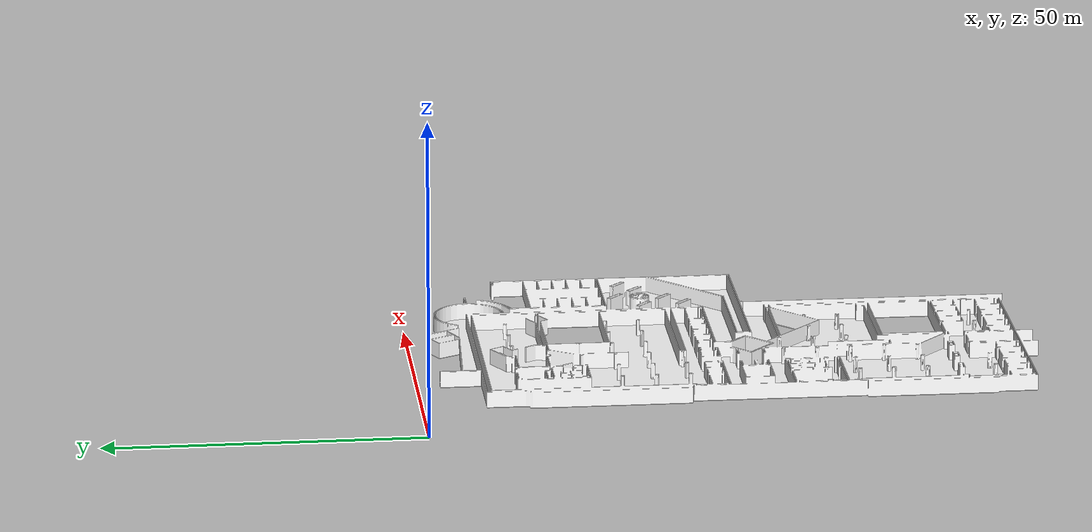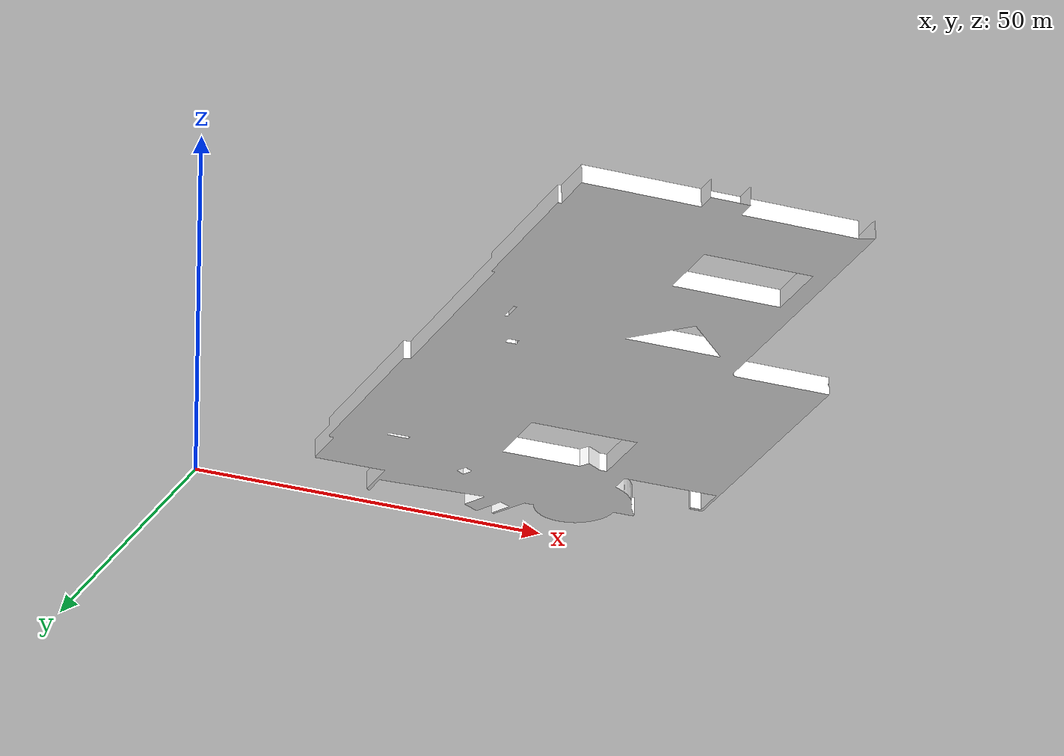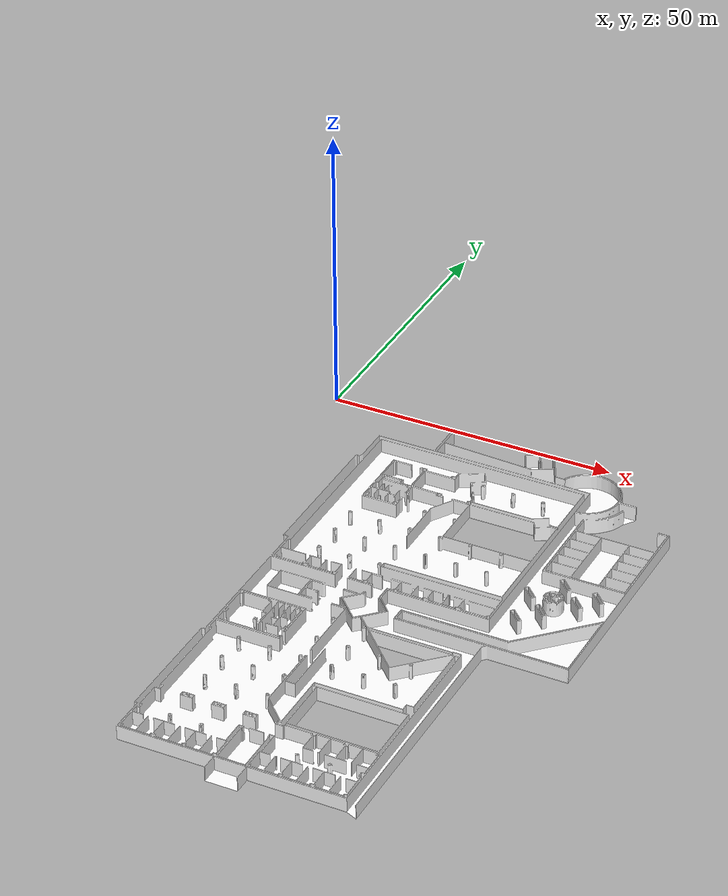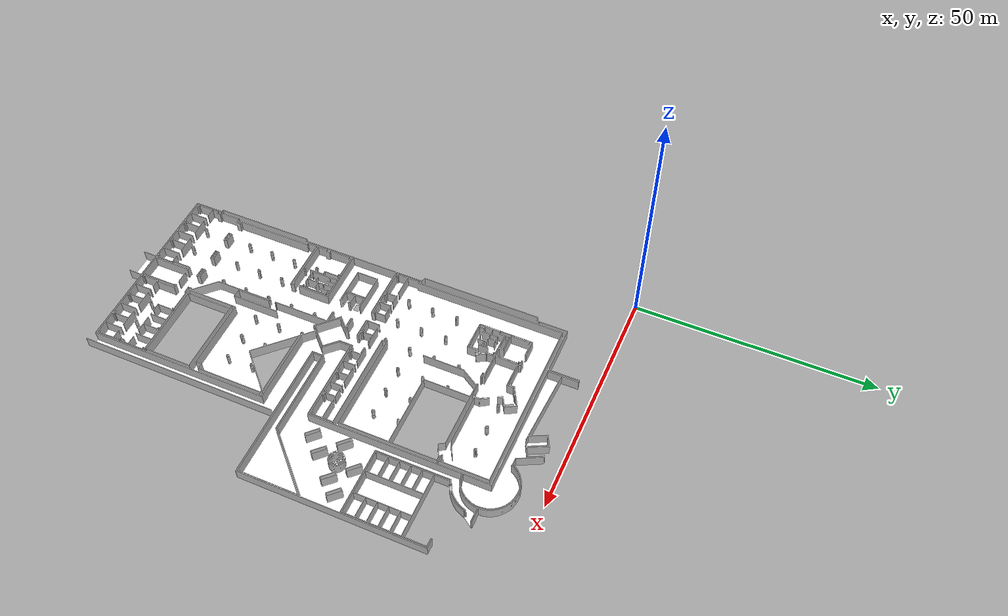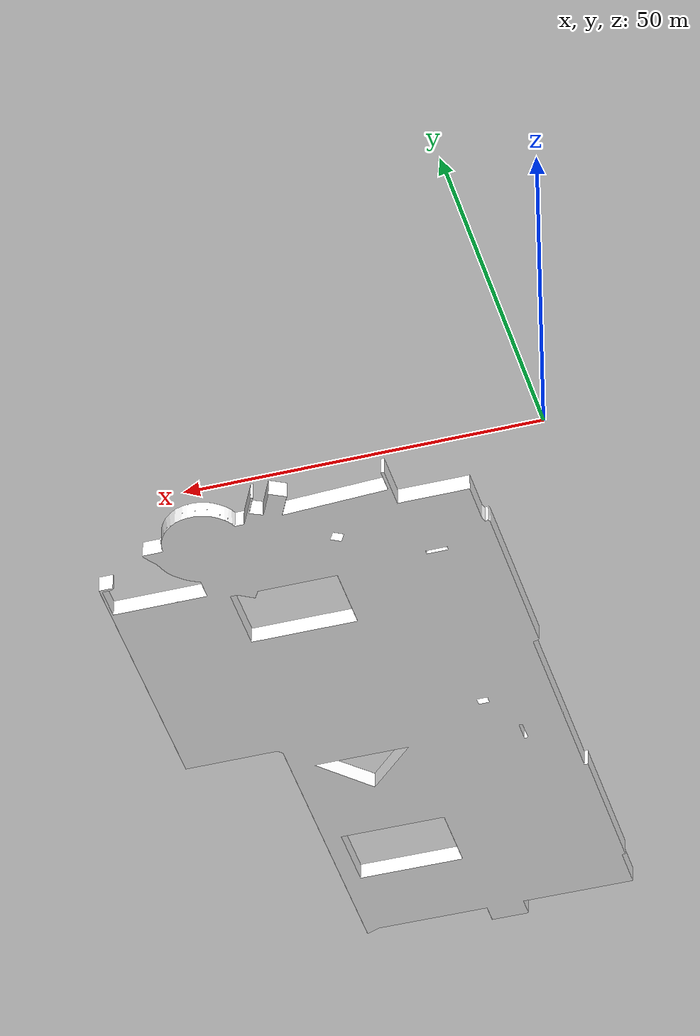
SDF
<?xml version='1.0' encoding='utf-8'?>
<sdf version="1.7">
  <model name="library_L4">
    <static>true</static>
    <link name="floor_1">
      <visual name="visual">
        <geometry>
          <mesh>
            <uri>model://library_L4/meshes/floor_1.obj</uri>
          </mesh>
        </geometry>
        <material>
          <diffuse>1.0 1.0 1.0</diffuse>
          <specular>0.1 0.1 0.1</specular>
          <pbr>
            <metal>
              <metalness>0.0</metalness>
              <albedo_map>model://library_L4/meshes/blue_linoleum.png</albedo_map>
            </metal>
          </pbr>
          <script>
            <uri>model://library_L4/meshes/</uri>
            <name>floor_1_Diffuse</name>
          </script>
        </material>
      </visual>
      <collision name="collision">
        <geometry>
          <mesh>
            <uri>model://library_L4/meshes/floor_1.obj</uri>
          </mesh>
        </geometry>
        <surface>
          <contact>
            <collide_bitmask>0x01</collide_bitmask>
          </contact>
        </surface>
      </collision>
    </link>
    <link name="wall_1">
      <visual name="wall_1">
        <geometry>
          <mesh>
            <uri>model://library_L4/meshes/wall_1.obj</uri>
          </mesh>
        </geometry>
        <transparency>0.0</transparency>
        <material>
          <diffuse>1.0 1.0 1.0</diffuse>
          <specular>0.1 0.1 0.1</specular>
          <pbr>
            <metal>
              <metalness>0.0</metalness>
              <albedo_map>model://library_L4/meshes/default.png</albedo_map>
            </metal>
          </pbr>
          <script>
            <uri>model://library_L4/meshes/</uri>
            <name>wall_1_Diffuse</name>
          </script>
        </material>
      </visual>
      <collision name="collision">
        <geometry>
          <mesh>
            <uri>model://library_L4/meshes/wall_1.obj</uri>
          </mesh>
        </geometry>
        <surface>
          <contact>
            <collide_bitmask>0x01</collide_bitmask>
          </contact>
        </surface>
      </collision>
      <pose>12.010586545125017 -98.85380450407028 0 0 0 0</pose>
    </link>
  </model>
</sdf>
